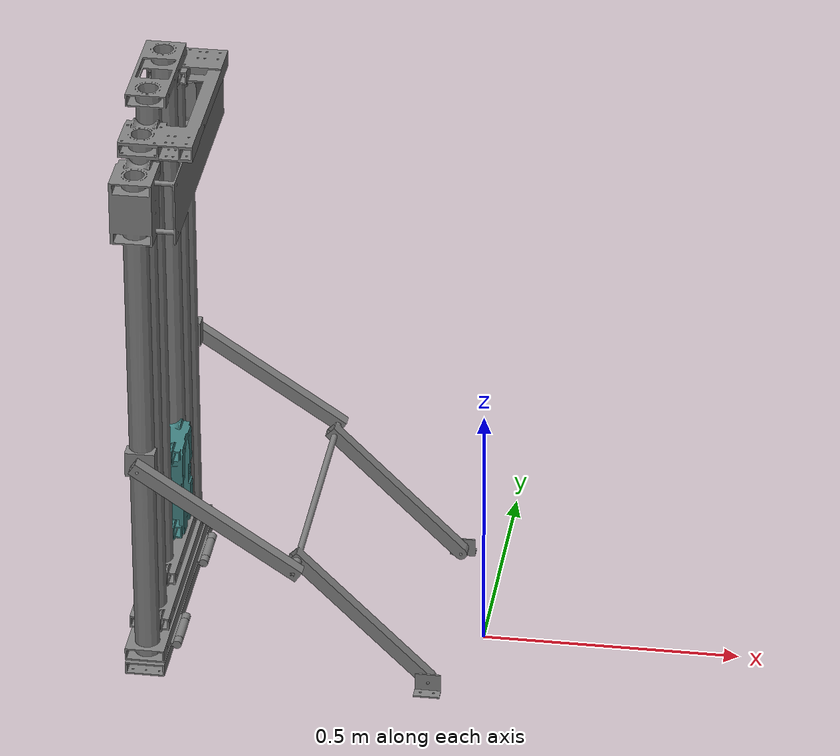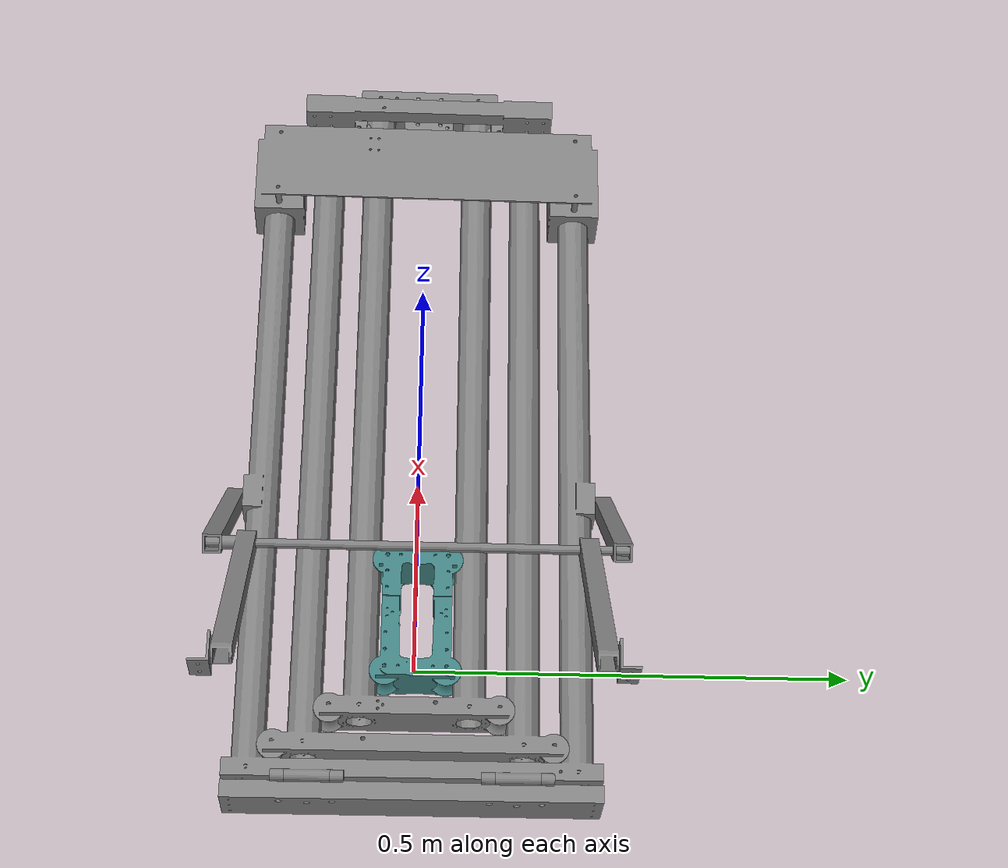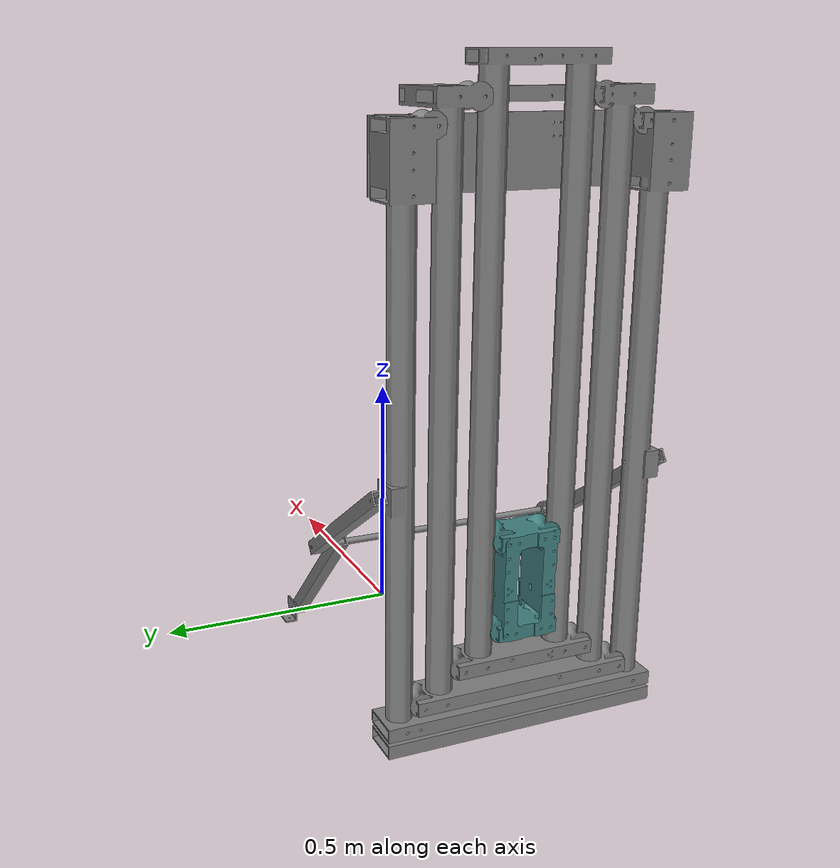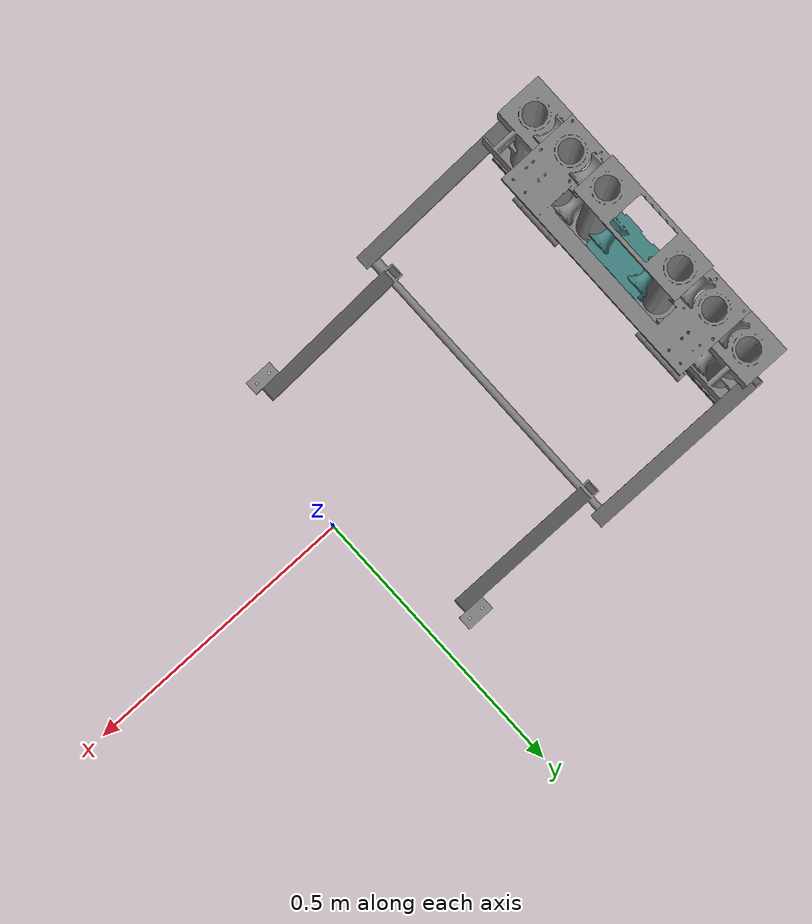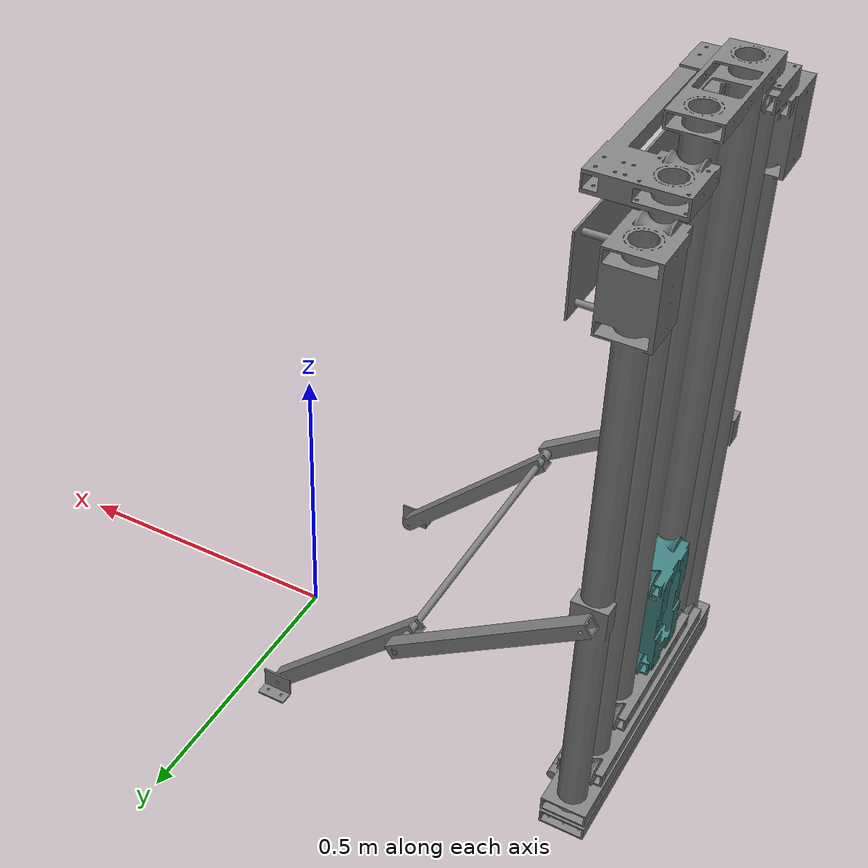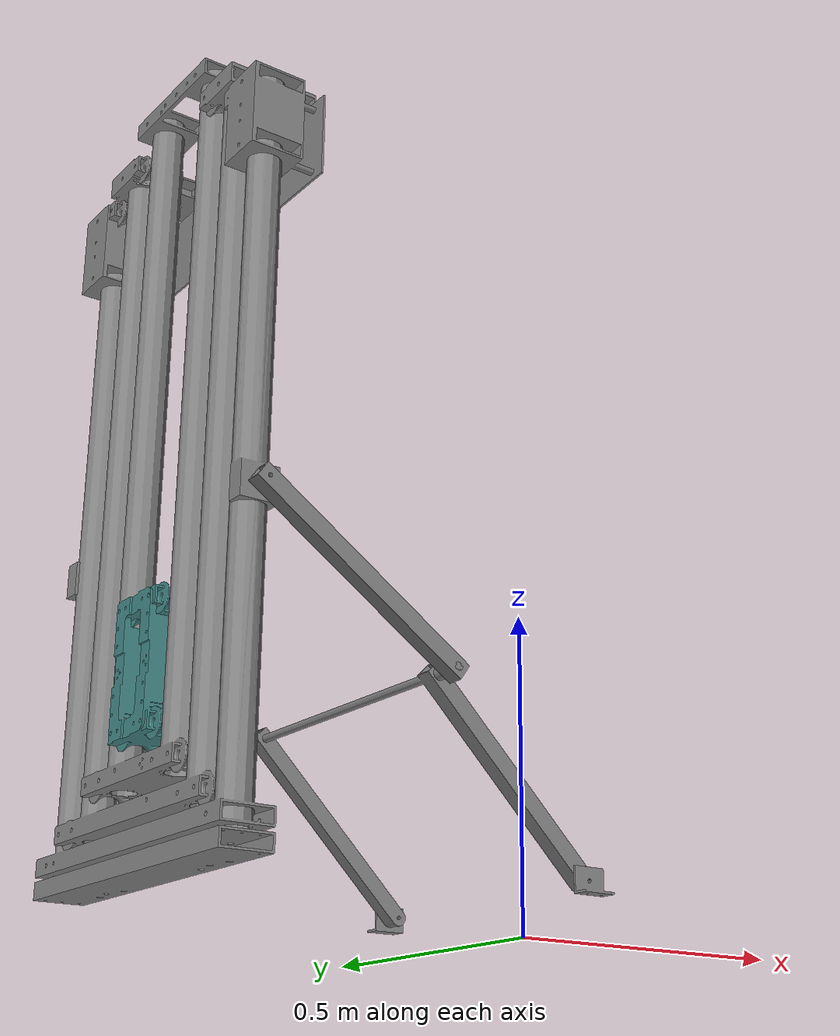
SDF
<?xml version="1.0" encoding="utf-8"?>
<sdf version="1.5">
  <model name="Elevator">
    <pose>-0.66 -0.265 0.03 3.14159 -0.003567 3.14159</pose>
    <link name="FrameBase">
      <gravity>1</gravity>
      <self_collide>0</self_collide>
      <pose>-0.0692332840636431 0.266711468696946 -0.0135500056389031 -1.5707963267949 0 0</pose>
      <must_be_base_link>0</must_be_base_link>
      <velocity_decay>
        <linear>0</linear>
        <angular>0</angular>
      </velocity_decay>
      <inertial>
        <mass>0.967597258478304</mass>
        <pose>0 0 0 0 0 0</pose>
        <inertia>
          <ixx>0.00430893297758607</ixx>
          <ixy>8.2139190539863E-06</ixy>
          <ixz>2.89564781925441E-07</ixz>
          <iyy>0.0187848870575196</iyy>
          <iyz>1.69755410866169E-08</iyz>
          <izz>0.0144997646753308</izz>
        </inertia>
      </inertial>
      <collision name="FrameBase_collision">
        <pose>0.0311332840636431 -0.000850005638903144 -1.14686969464102E-05 0 0 0</pose>
        <geometry>
          <mesh>
            <scale>1 1 1</scale>
            <uri>model://Elevator/meshes/FrameBase_col.STL</uri>
          </mesh>
        </geometry>
        <surface>
          <contact>
            <ode />
          </contact>
          <friction>
            <ode>
              <mu>0</mu>
              <mu2>0</mu2>
            </ode>
          </friction>
        </surface>
      </collision>
      <visual name="FrameBase_visual">
        <pose>0.0311332840636431 -0.000850005638903144 -1.14686969464102E-05 0 0 0</pose>
        <material>
          <ambient>0.501960784313725 0.501960784313725 0.501960784313725 1</ambient>
          <diffuse>0.501960784313725 0.501960784313725 0.501960784313725 1</diffuse>
        </material>
        <geometry>
          <mesh>
            <scale>1 1 1</scale>
            <uri>model://Elevator/meshes/FrameBase.STL</uri>
          </mesh>
        </geometry>
      </visual>
    </link>
    <link name="ElevatorBase">
      <gravity>1</gravity>
      <self_collide>0</self_collide>
      <pose>-0.0489224631738407 0.266697147126975 -0.597377393685777 -1.5707963267949 0 0</pose>
      <must_be_base_link>0</must_be_base_link>
      <velocity_decay>
        <linear>0</linear>
        <angular>0</angular>
      </velocity_decay>
      <inertial>
        <mass>6.18862194274529</mass>
        <pose>0 0 0 0 0 0</pose>
        <inertia>
          <ixx>0.815371582005532</ixx>
          <ixy>0.00115872360120666</ixy>
          <ixz>3.38872009620446E-06</ixz>
          <iyy>0.27656283423519</iyy>
          <iyz>4.87362429240248E-05</iyz>
          <izz>0.575488048079503</izz>
        </inertia>
      </inertial>
      <collision name="ElevatorBase_collision">
        <pose>0.0108224631738407 -0.584677393685777 2.85287302557384E-06 0 0 0</pose>
        <geometry>
          <mesh>
            <scale>1 1 1</scale>
            <uri>model://Elevator/meshes/ElevatorBase_col.STL</uri>
          </mesh>
        </geometry>
        <surface>
          <contact>
            <ode />
          </contact>
          <friction>
            <ode>
              <mu>0</mu>
              <mu2>0</mu2>
            </ode>
          </friction>
        </surface>
      </collision>
      <visual name="ElevatorBase_visual">
        <pose>0.0108224631738407 -0.584677393685777 2.85287302557384E-06 0 0 0</pose>
        <material>
          <ambient>0.501960784313725 0.501960784313725 0.501960784313725 1</ambient>
          <diffuse>0.501960784313725 0.501960784313725 0.501960784313725 1</diffuse>
        </material>
        <geometry>
          <mesh>
            <scale>1 1 1</scale>
            <uri>model://Elevator/meshes/ElevatorBase.STL</uri>
          </mesh>
        </geometry>
      </visual>
    </link>
    <joint name="FrameBase-ElevatorBase" type="revolute">
      <parent>FrameBase</parent>
      <child>ElevatorBase</child>
      <pose>-0.0396732278936056 -0.568802393685777 7.7012235564361E-18 0 0 0</pose>
      <axis>
        <xyz>0 0 -1</xyz>
        <dynamics>
          <damping>1</damping>
          <friction>1</friction>
        </dynamics>
        <limit>
          <upper>0.6</upper>
          <lower>0</lower>
        </limit>
        <use_parent_model_frame>0</use_parent_model_frame>
      </axis>
    </joint>
    <link name="Stage1">
      <gravity>1</gravity>
      <self_collide>0</self_collide>
      <pose>-0.044951484506086 0.268157125772729 -0.614137876940995 -1.5707963267949 0 0</pose>
      <must_be_base_link>0</must_be_base_link>
      <velocity_decay>
        <linear>0</linear>
        <angular>0</angular>
      </velocity_decay>
      <inertial>
        <mass>5.14333379372811</mass>
        <pose>0 0 0 0 0 0</pose>
        <inertia>
          <ixx>0.481771673218427</ixx>
          <ixy>0.0174062674878509</ixy>
          <ixz>0.000375739832185117</ixz>
          <iyy>0.106616123645562</iyy>
          <iyz>0.0036623539597195</iyz>
          <izz>0.37969270586102</izz>
        </inertia>
      </inertial>
      <collision name="Stage1_collision">
        <pose>0.00685148450608597 -0.601437876940995 -0.00145712577272882 0 0 0</pose>
        <geometry>
          <mesh>
            <scale>1 1 1</scale>
            <uri>model://Elevator/meshes/Stage1_col.STL</uri>
          </mesh>
        </geometry>
        <surface>
          <contact>
            <ode />
          </contact>
          <friction>
            <ode>
              <mu>1</mu>
              <mu2>1</mu2>
            </ode>
          </friction>
        </surface>
      </collision>
      <visual name="Stage1_visual">
        <pose>0.00685148450608597 -0.601437876940995 -0.00145712577272882 0 0 0</pose>
        <material>
          <ambient>0.501960784313725 0.501960784313725 0.501960784313725 1</ambient>
          <diffuse>0.501960784313725 0.501960784313725 0.501960784313725 1</diffuse>
        </material>
        <geometry>
          <mesh>
            <scale>1 1 1</scale>
            <uri>model://Elevator/meshes/Stage1.STL</uri>
          </mesh>
        </geometry>
      </visual>
    </link>
    <joint name="ElevatorBase-Stage1" type="prismatic">
      <parent>ElevatorBase</parent>
      <child>Stage1</child>
      <pose>0.006851 -0 0.230369 0 -0 -1.5708</pose>
      <axis>
        <xyz>1 0 0</xyz>
        <dynamics>
          <damping>1</damping>
          <friction>1</friction>
        </dynamics>
        <limit>
          <upper>0.85</upper>
          <lower>0.0</lower>
          <effort>500</effort>
        </limit>
        <use_parent_model_frame>0</use_parent_model_frame>
      </axis>
    </joint>
    <link name="Stage2">
      <gravity>1</gravity>
      <self_collide>0</self_collide>
      <pose>-0.0381000259334506 0.266705219918479 -0.630865467570375 -1.5707963267949 0 0</pose>
      <must_be_base_link>0</must_be_base_link>
      <velocity_decay>
        <linear>0</linear>
        <angular>0</angular>
      </velocity_decay>
      <inertial>
        <mass>4.28522513417582</mass>
        <pose>0 0 0 0 0 0</pose>
        <inertia>
          <ixx>0.176009586432212</ixx>
          <ixy>2.36115592357987E-09</ixy>
          <ixz>5.79862963880284E-13</ixz>
          <iyy>0.0234279109967537</iyy>
          <iyz>9.4652964310782E-06</iyz>
          <izz>0.15258167543546</izz>
        </inertia>
      </inertial>
      <collision name="Stage2_collision">
        <pose>2.59334506020675E-08 -0.618165467570375 -5.21991847892455E-06 0 0 0</pose>
        <geometry>
          <mesh>
            <scale>1 1 1</scale>
            <uri>model://Elevator/meshes/Stage2_col.STL</uri>
          </mesh>
        </geometry>
        <surface>
          <contact>
            <ode />
          </contact>
          <friction>
            <ode>
              <mu>1</mu>
              <mu2>1</mu2>
            </ode>
          </friction>
        </surface>
      </collision>
      <visual name="Stage2_visual">
        <pose>2.59334506020675E-08 -0.618165467570375 -5.21991847892455E-06 0 0 0</pose>
        <material>
          <ambient>0.501960784313725 0.501960784313725 0.501960784313725 1</ambient>
          <diffuse>0.501960784313725 0.501960784313725 0.501960784313725 1</diffuse>
        </material>
        <geometry>
          <mesh>
            <scale>1 1 1</scale>
            <uri>model://Elevator/meshes/Stage2.STL</uri>
          </mesh>
        </geometry>
      </visual>
    </link>
    <joint name="Stage1-Stage2" type="prismatic">
      <parent>Stage1</parent>
      <child>Stage2</child>
      <pose>2.59334506020675E-08 -4.44089209850063E-16 0.231820580081516 0 0 1.5707963267949</pose>
      <axis>
        <xyz>-1 0 0</xyz>
        <dynamics>
          <damping>1</damping>
          <friction>1</friction>
        </dynamics>
        <limit>
          <upper>0.95</upper>
          <lower>0.0</lower>
          <effort>200</effort>
        </limit>
        <use_parent_model_frame>0</use_parent_model_frame>
      </axis>
    </joint>
    <link name="Carriage">
      <gravity>1</gravity>
      <self_collide>0</self_collide>
      <pose>-0.0380999999163021 0.266700000266276 -0.281063339012714 -1.5707963267949 0 0</pose>
      <must_be_base_link>0</must_be_base_link>
      <velocity_decay>
        <linear>0</linear>
        <angular>0</angular>
      </velocity_decay>
      <inertial>
        <mass>0.1</mass>
        <pose frame=''>0 0 0 0 -0 0</pose>
        <inertia>
        <ixx>0</ixx>
        <ixy>0</ixy>
        <ixz>0</ixz>
        <iyy>0</iyy>
        <iyz>0</iyz>
        <izz>0</izz>
        </inertia>
      </inertial>
      <collision name="Carriage_collision">
        <pose>-8.36978548987117E-11 -0.268363339012714 -2.66276181522724E-10 0 0 0</pose>
        <geometry>
          <mesh>
            <scale>1 1 1</scale>
            <uri>model://Elevator/meshes/Carriage_col.STL</uri>
          </mesh>
        </geometry>
        <surface>
          <contact>
            <ode />
          </contact>
          <friction>
            <ode>
              <mu>0</mu>
              <mu2>0</mu2>
            </ode>
          </friction>
        </surface>
      </collision>
      <visual name="Carriage_visual">
        <pose>-8.36978548987117E-11 -0.268363339012714 -2.66276181522724E-10 0 0 0</pose>
        <material>
          <ambient>0.250980392156863 0.501960784313725 0.501960784313725 1</ambient>
          <diffuse>0.250980392156863 0.501960784313725 0.501960784313725 1</diffuse>
        </material>
        <geometry>
          <mesh>
            <scale>1 1 1</scale>
            <uri>model://Elevator/meshes/Carriage.STL</uri>
          </mesh>
        </geometry>
      </visual>
      <sensor name="CarriageCamera" type="camera">
        <visualize>0</visualize>
        <always_on>1</always_on>
        <update_rate>10</update_rate>
        <pose frame=''>0.0381 0.0 -0 1.5708 3.14 3.14</pose>
        <camera name="Carriagecamera">
          <horizontal_fov>1.5707963267949</horizontal_fov>
          <image>
            <width>320</width>
            <height>240</height>
          </image>
          <clip>
            <near>0.05</near>
            <far>50</far>
          </clip>
          <save enabled="true">
              <path>/tmp/driver-camera</path>
          </save>
          </camera>
      </sensor>
    </link>
    <joint name="Stage2-Carriage" type="prismatic">
      <parent>Stage2</parent>
      <child>Carriage</child>
      <pose>-8.36978548987117E-11 -3.8746783559418E-14 0.231825799733719 0 0 1.5707963267949</pose>
      <axis>
        <xyz>-1 0 0</xyz>
        <dynamics>
          <damping>1</damping>
          <friction>1</friction>
        </dynamics>
        <limit>
          <upper>0.75</upper>
          <lower>0.0</lower>
          <effort>100</effort>
        </limit>
        <use_parent_model_frame>0</use_parent_model_frame>
      </axis>
    </joint>
    <link name="TilterBaseArm">
      <gravity>1</gravity>
      <self_collide>0</self_collide>
      <pose>-0.3960903732572 0.261767047417281 -0.206919257830928 -1.5707963267949 0 0</pose>
      <must_be_base_link>0</must_be_base_link>
      <velocity_decay>
        <linear>0</linear>
        <angular>0</angular>
      </velocity_decay>
      <inertial>
        <mass>0.414123580721828</mass>
        <pose>0 0 0 0 0 0</pose>
        <inertia>
          <ixx>0.0131140860742016</ixx>
          <ixy>0.00161298697097021</ixy>
          <ixz>0.000129717520381681</ixz>
          <iyy>0.0131182109024561</iyy>
          <iyz>0.000129551765657884</iyz>
          <izz>0.00322597657900468</izz>
        </inertia>
      </inertial>
      <collision name="TilterBaseArm_collision">
        <pose>0.3579903732572 -0.194219257830928 0.00493295258271862 0 0 0</pose>
        <geometry>
          <mesh>
            <scale>1 1 1</scale>
            <uri>model://Elevator/meshes/TilterBaseArm_col.STL</uri>
          </mesh>
        </geometry>
        <surface>
          <contact>
            <ode />
          </contact>
          <friction>
            <ode>
              <mu>0</mu>
              <mu2>0</mu2>
            </ode>
          </friction>
        </surface>
      </collision>
      <visual name="TilterBaseArm_visual">
        <pose>0.3579903732572 -0.194219257830928 0.00493295258271862 0 0 0</pose>
        <material>
          <ambient>0.501960784313725 0.501960784313725 0.501960784313725 1</ambient>
          <diffuse>0.501960784313725 0.501960784313725 0.501960784313725 1</diffuse>
        </material>
        <geometry>
          <mesh>
            <scale>1 1 1</scale>
            <uri>model://Elevator/meshes/TilterBaseArm.STL</uri>
          </mesh>
        </geometry>
      </visual>
    </link>
    <joint name="FrameBase-TilterBaseArm" type="revolute">
      <parent>FrameBase</parent>
      <child>TilterBaseArm</child>
      <pose>-0.188109626742797 -0.187869257830928 3.69454822637949E-11 0 0 0</pose>
      <axis>
        <xyz>0 0 1</xyz>
        <dynamics>
          <damping>1</damping>
          <friction>1</friction>
        </dynamics>
        <limit>
          <upper>1</upper>
          <lower>-1</lower>
        </limit>
        <use_parent_model_frame>0</use_parent_model_frame>
      </axis>
    </joint>
      <joint name="TilterEleArm-TilterBaseArm" type="revolute">
      <parent>TilterEleArm</parent>
      <child>TilterBaseArm</child>
      <pose>0.0634982471572795 0.0634171082765121 -1.24379673227537E-15 0 0 0</pose>
      <axis>
        <xyz>0 1 0</xyz>
        <dynamics>
          <damping>1</damping>
          <friction>1</friction>
        </dynamics>
        <use_parent_model_frame>1</use_parent_model_frame>
        <limit>
            <upper>1.25</upper>
            <lower>0</lower>
        </limit>
      </axis>
    </joint>
    <link name="TilterEleArm">
      <gravity>1</gravity>
      <self_collide>0</self_collide>
      <pose>-0.185346063049962 0.266699999999998 -0.36999296105372 -1.5707963267949 0 0</pose>
      <must_be_base_link>0</must_be_base_link>
      <velocity_decay>
        <linear>0</linear>
        <angular>0</angular>
      </velocity_decay>
      <inertial>
        <mass>0.514275816876933</mass>
        <pose>0 0 0 0 0 0</pose>
        <inertia>
          <ixx>0.159756126215111</ixx>
          <ixy>0</ixy>
          <ixz>0</ixz>
          <iyy>0.159756126215111</iyy>
          <iyz>0</iyz>
          <izz>0</izz>
        </inertia>
      </inertial>
      <collision name="TilterEleArm_collision">
        <pose>0.147246063049962 -0.35729296105372 2.34776754262571E-15 0 0 0</pose>
        <geometry>
          <mesh>
            <scale>1 1 1</scale>
            <uri>model://Elevator/meshes/TilterEleArm_col.STL</uri>
          </mesh>
        </geometry>
        <surface>
          <contact>
            <ode />
          </contact>
          <friction>
            <ode>
              <mu>0</mu>
              <mu2>0</mu2>
            </ode>
          </friction>
        </surface>
      </collision>
      <visual name="TilterEleArm_visual">
        <pose>0.147246063049962 -0.35729296105372 2.34776754262571E-15 0 0 0</pose>
        <material>
          <ambient>0.501960784313725 0.501960784313725 0.501960784313725 1</ambient>
          <diffuse>0.501960784313725 0.501960784313725 0.501960784313725 1</diffuse>
        </material>
        <geometry>
          <mesh>
            <scale>1 1 1</scale>
            <uri>model://Elevator/meshes/TilterEleArm.STL</uri>
          </mesh>
        </geometry>
      </visual>
    </link>
    <joint name="ElevatorBase-TilterEleArm" type="revolute">
      <parent>ElevatorBase</parent>
      <child>TilterEleArm</child>
      <pose>0.147246063049962 0.0996565949462797 2.38343795837915E-16 0 0 0</pose>
      <axis>
        <xyz>0 0 1</xyz>
        <dynamics>
          <damping>1</damping>
          <friction>1</friction>
        </dynamics>
        <limit>
          <upper>3</upper>
          <lower>-3</lower>
          <effort>100</effort>
        </limit>
        <use_parent_model_frame>0</use_parent_model_frame>
      </axis>
    </joint>
    <plugin name="TilterEleArm-TilterBaseArm_piston" filename="sim_piston.dll">
        <joint>TilterEleArm-TilterBaseArm</joint>
        <topic>~/gazebo/frc/simulator/piston/2</topic>
        <forward-force>100</forward-force>
        <reverse-force>100</reverse-force>
    </plugin>

    <plugin name="ElevatorBase-Stage1_motor" filename="sim_motor.dll">
      <joint>ElevatorBase-Stage1</joint>
      <topic>~/gazebo/frc/simulator/motor/7</topic>
      <multiplier>200</multiplier>
    </plugin>
    <plugin name="ElevatorBase-Stage1_encoder" filename="sim_encoder.dll">
      <joint>ElevatorBase-Stage1</joint>
      <topic>~/gazebo/frc/simulator/encoder/7</topic>
    </plugin>
    <plugin name="Stage1-Stage2_motor" filename="sim_motor.dll">
      <joint>Stage1-Stage2</joint>
      <topic>~/gazebo/frc/simulator/motor/8</topic>
      <multiplier>100</multiplier>
    </plugin>
    <plugin name="Stage1-Stage2_encoder" filename="sim_encoder.dll">
      <joint>Stage1-Stage2</joint>
      <topic>~/gazebo/frc/simulator/encoder/8</topic>
    </plugin>
    <plugin name="Stage2-Carriage_motor" filename="sim_motor.dll">
      <joint>Stage2-Carriage</joint>
      <topic>~/gazebo/frc/simulator/motor/9</topic>
      <multiplier>50</multiplier>
    </plugin>
       <plugin name="Stage2-Carriage_encoder" filename="sim_encoder.dll">
        <joint>Stage2-Carriage</joint>
        <topic>~/gazebo/frc/simulator/encoder/9</topic>
    </plugin>
  </model>
</sdf>
